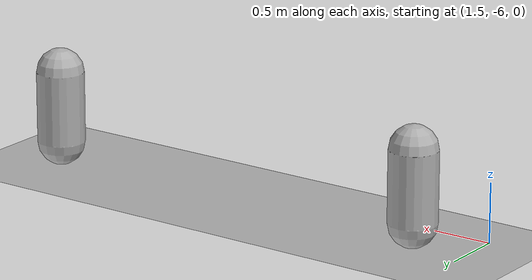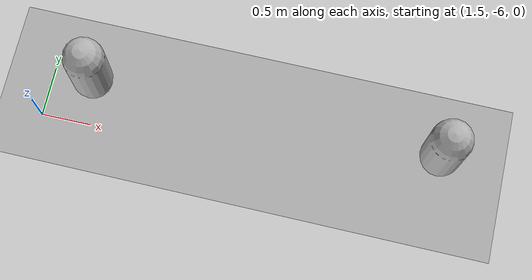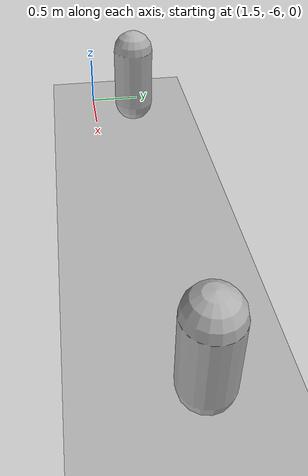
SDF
<sdf version="1.10">
 <world name="default">
  <model name="ground_plane">
   <static>true</static>
   <link name="link">
    <collision name="collision">
     <geometry><plane><normal>0 0 1</normal><size>100 100</size></plane></geometry>
     <surface><friction><ode><mu>100</mu><mu2>50</mu2></ode></friction></surface>
    </collision>
    <visual name="visual">
     <cast_shadows>false</cast_shadows>
     <geometry><plane><normal>0 0 1</normal><size>100 100</size></plane></geometry>
     <material>
      <ambient>0.300000012 0.300000012 0.300000012 1</ambient>
      <diffuse>0.699999988 0.699999988 0.699999988 1</diffuse>
      <specular>0.00999999978 0.00999999978 0.00999999978 1</specular>
     </material>
    </visual>
    <inertial>
     <mass>1</mass>
     <inertia><ixx>1</ixx><ixy>0</ixy><ixz>0</ixz><iyy>1</iyy><iyz>0</iyz><izz>1</izz></inertia>
    </inertial>
   </link>
  </model>
  <model name="capsule_29">
   <pose>1.9378832749626507 -5.5776439341346213 0.5 0 0 0</pose>
   <link name="capsule_link">
    <inertial>
     <inertia>
      <ixx>0.074153999999999998</ixx>
      <ixy>0</ixy>
      <ixz>0</ixz>
      <iyy>0.074153999999999998</iyy>
      <iyz>0</iyz>
      <izz>0.018769000000000001</izz>
     </inertia>
     <mass>1</mass>
    </inertial>
    <collision name="capsule_collision">
     <geometry>
      <capsule><radius>0.20000000000000001</radius><length>0.59999999999999998</length></capsule>
     </geometry>
    </collision>
    <visual name="capsule_visual">
     <geometry>
      <capsule><radius>0.20000000000000001</radius><length>0.59999999999999998</length></capsule>
     </geometry>
     <material>
      <ambient>0.300000012 0.300000012 0.300000012 1</ambient>
      <diffuse>0.699999988 0.699999988 0.699999988 1</diffuse>
      <specular>1 1 1 1</specular>
     </material>
    </visual>
   </link>
   <static>false</static>
  </model>
  <model name="capsule_30">
   <pose>5.4302822367585586 -5.5788471322777022 0.5 0 0 0</pose>
   <link name="capsule_link">
    <inertial>
     <inertia>
      <ixx>0.074153999999999998</ixx>
      <ixy>0</ixy>
      <ixz>0</ixz>
      <iyy>0.074153999999999998</iyy>
      <iyz>0</iyz>
      <izz>0.018769000000000001</izz>
     </inertia>
     <mass>1</mass>
    </inertial>
    <collision name="capsule_collision">
     <geometry>
      <capsule><radius>0.20000000000000001</radius><length>0.59999999999999998</length></capsule>
     </geometry>
    </collision>
    <visual name="capsule_visual">
     <geometry>
      <capsule><radius>0.20000000000000001</radius><length>0.59999999999999998</length></capsule>
     </geometry>
     <material>
      <ambient>0.300000012 0.300000012 0.300000012 1</ambient>
      <diffuse>0.699999988 0.699999988 0.699999988 1</diffuse>
      <specular>1 1 1 1</specular>
     </material>
    </visual>
   </link>
   <static>false</static>
  </model>
 </world>
</sdf>
